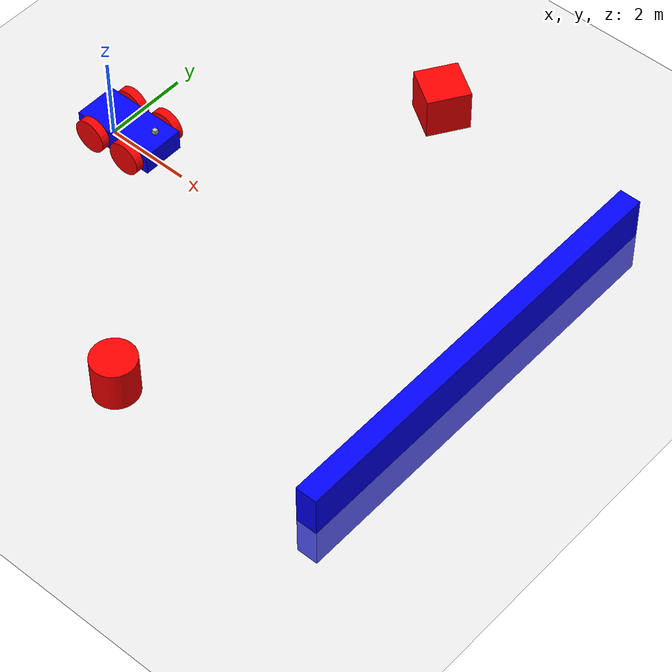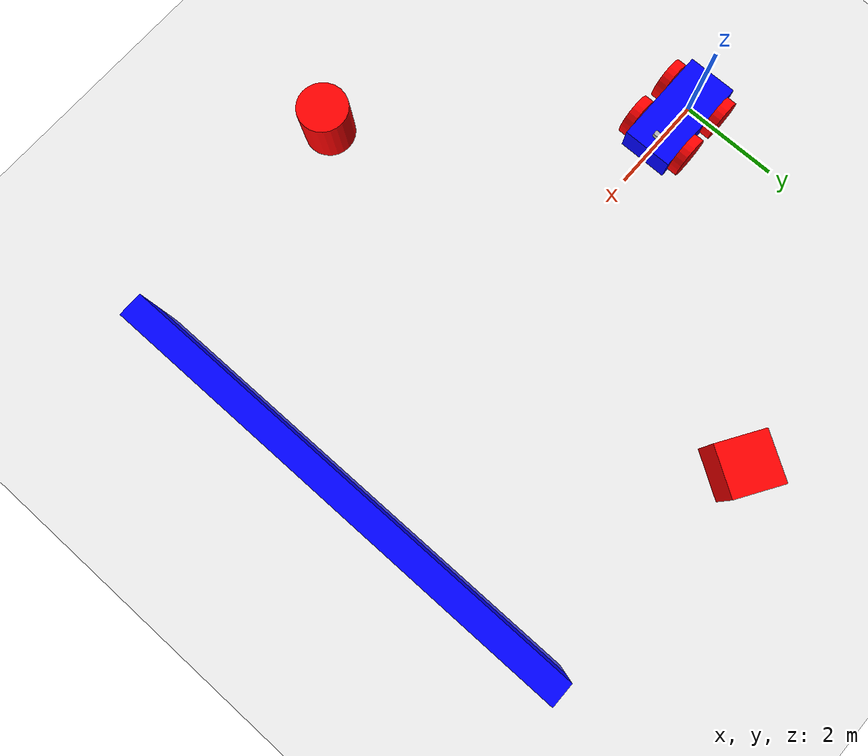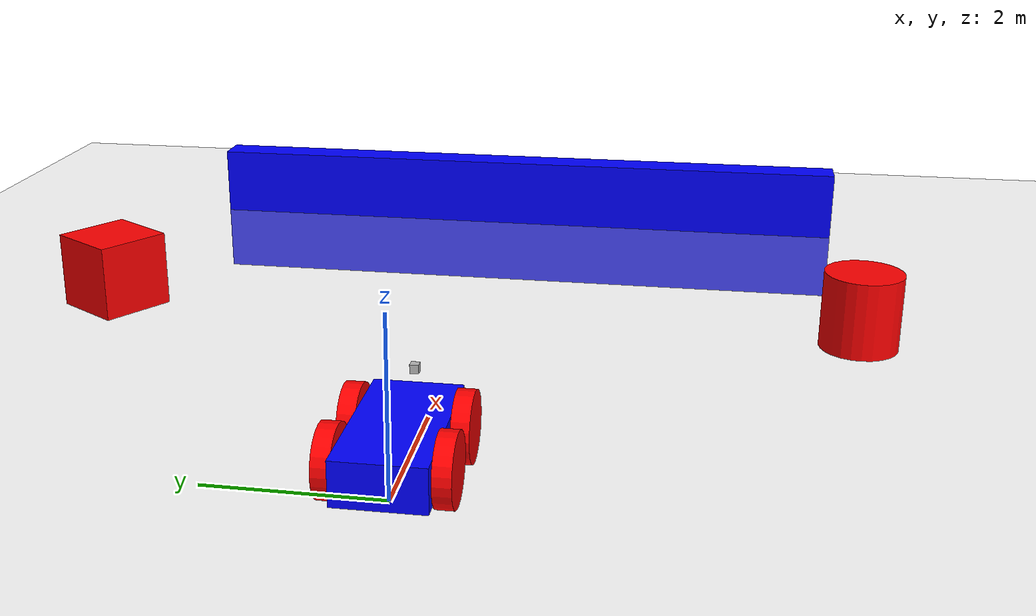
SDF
<?xml version="1.0"?>
<sdf version="1.10">
    <world name="car_world">

        <plugin filename="gz-sim-imu-system"
            name="gz::sim::systems::Imu">
        </plugin>
        <plugin filename="gz-sim-contact-system"
            name="gz::sim::systems::Contact">
        </plugin>
        <plugin
            filename="gz-sim-sensors-system"
            name="gz::sim::systems::Sensors">
            <render_engine>ogre2</render_engine>
        </plugin>

        <physics name="1ms" type="ignored">
            <max_step_size>0.001</max_step_size>
            <real_time_factor>1.0</real_time_factor>
        </physics>
        <plugin
            filename="gz-sim-physics-system"
            name="gz::sim::systems::Physics">
        </plugin>
        <plugin
            filename="gz-sim-user-commands-system"
            name="gz::sim::systems::UserCommands">
        </plugin>
        <plugin
            filename="gz-sim-scene-broadcaster-system"
            name="gz::sim::systems::SceneBroadcaster">
        </plugin>

        <light type="directional" name="sun">
            <cast_shadows>true</cast_shadows>
            <pose>0 0 10 0 0 0</pose>
            <diffuse>0.8 0.8 0.8 1</diffuse>
            <specular>0.2 0.2 0.2 1</specular>
            <attenuation>
                <range>1000</range>
                <constant>0.9</constant>
                <linear>0.01</linear>
                <quadratic>0.001</quadratic>
            </attenuation>
            <direction>-0.5 0.1 -0.9</direction>
        </light>

        <model name="ground_plane">
            <static>true</static>
            <link name="link">
                <collision name="collision">
                    <geometry>
                        <plane>
                            <normal>0 0 1</normal>
                        </plane>
                    </geometry>
                </collision>
                <visual name="visual">
                    <geometry>
                        <plane>
                            <normal>0 0 1</normal>
                            <size>100 100</size>
                        </plane>
                    </geometry>
                    <material>
                        <ambient>0.8 0.8 0.8 1</ambient>
                        <diffuse>0.8 0.8 0.8 1</diffuse>
                        <specular>0.8 0.8 0.8 1</specular>
                    </material>
                </visual>
            </link>
        </model>

        <model name='wall'>
            <static>true</static>
            <pose>10 0 0 0 0 0</pose><!--pose
            relative to the world-->
            <link name='box'>
                <visual name='visual'>
                    <geometry>
                        <box>
                            <size>0.5 10.0 2.0</size>
                        </box>
                    </geometry>
                    <!--let's
                    add color to our link-->
                    <material>
                        <ambient>0.0 0.0 1.0 1</ambient>
                        <diffuse>0.0 0.0 1.0 1</diffuse>
                        <specular>0.0 0.0 1.0 1</specular>
                    </material>
                </visual>
                <collision name='collision'>
                    <geometry>
                        <box>
                            <size>0.5 10.0 2.0</size>
                        </box>
                    </geometry>
                </collision>

                <sensor name='sensor_contact' type='contact'>
                    <contact>
                        <collision>collision</collision>
                    </contact>
                </sensor>
            </link>

            <plugin filename="gz-sim-touchplugin-system"
                name="gz::sim::systems::TouchPlugin">
                <target>vehicle_blue</target>
                <namespace>wall</namespace>
                <time>0.001</time>
                <enabled>true</enabled>

            </plugin>

        </model>

        <model name='box2'>
            <static>true</static>
            <pose>5 5 0.5 0 0 1</pose>
            <link name="link">
                <visual name='visual'>
                    <geometry>
                        <box>
                            <size>1 1 1</size>
                        </box>
                    </geometry>
                    <material>
                        <ambient>1.0 0.0 0.0 1</ambient>
                        <diffuse>1.0 0.0 0.0 1</diffuse>
                        <specular>1.0 0.0 0.0 1</specular>
                    </material>
                </visual>
                <collision name="collision">
                    <geometry>
                        <box>
                            <size>1 1 1</size>
                        </box>
                    </geometry>
                </collision>
            </link>
        </model>

        <model name='box3'>
            <static>true</static>
            <pose>5 -5 0.5 0 0 0</pose>
            <link name="link">
                <visual name='visual'>
                    <geometry>
                        <cylinder>
                            <radius>0.5</radius>
                            <length>1</length>
                        </cylinder>
                    </geometry>
                    <material>
                        <ambient>1.0 0.0 0.0 1</ambient>
                        <diffuse>1.0 0.0 0.0 1</diffuse>
                        <specular>1.0 0.0 0.0 1</specular>
                    </material>
                </visual>
                <collision name="collision">
                    <geometry>
                        <cylinder>
                            <radius>0.5</radius>
                            <length>1</length>
                        </cylinder>
                    </geometry>
                </collision>
            </link>
        </model>

        <plugin filename="gz-sim-triggered-publisher-system"
            name="gz::sim::systems::TriggeredPublisher">
            <input type="gz.msgs.Boolean" topic="/wall/touched">
                <match>data: true</match>
            </input>
            <output type="gz.msgs.Twist" topic="/cmd_vel">
                linear: {x: 0.0}, angular: {z: 0.0}
            </output>
        </plugin>

        <model name='vehicle_blue' canonical_link='chassis'>
            <pose relative_to='world'>0 0 0 0 0 0</pose>

            <link name='chassis'>
                <pose relative_to='__model__'>0.5 0 0.4 0 0 0</pose>
                <inertial> <!--inertial
                    properties of the link mass, inertia matix-->
                    <mass>1.14395</mass>
                    <inertia>
                        <ixx>0.095329</ixx>
                        <ixy>0</ixy>
                        <ixz>0</ixz>
                        <iyy>0.381317</iyy>
                        <iyz>0</iyz>
                        <izz>0.476646</izz>
                    </inertia>
                </inertial>
                <visual name='visual'>
                    <geometry>
                        <box>
                            <size>2.0 1.0 0.5</size>
                        </box>
                    </geometry>
                    <!--let's
                    add color to our link-->
                    <material>
                        <ambient>0.0 0.0 1.0 1</ambient>
                        <diffuse>0.0 0.0 1.0 1</diffuse>
                        <specular>0.0 0.0 1.0 1</specular>
                    </material>
                </visual>
                <collision name='collision'>
                    <geometry>
                        <box>
                            <size>2.0 1.0 0.5</size>
                        </box>
                    </geometry>
                </collision>

                <sensor name="imu_sensor" type="imu">
                    <always_on>1</always_on>
                    <update_rate>1</update_rate>
                    <visualize>true</visualize>
                    <topic>imu</topic>
                </sensor>
            </link>

            <link name='lidar_link'>
                <pose relative_to='chassis'>0.8 0 0.5 0 0 0</pose>
                <inertial>
                    <mass>0.1</mass>
                    <inertia>
                        <ixx>0.000166667</ixx>
                        <iyy>0.000166667</iyy>
                        <izz>0.000166667</izz>
                    </inertia>
                </inertial>
                <collision name='collision'>
                    <geometry>
                        <box>
                            <size>0.1 0.1 0.1</size>
                        </box>
                    </geometry>
                </collision>
                <visual name='visual'>
                    <geometry>
                        <box>
                            <size>0.1 0.1 0.1</size>
                        </box>
                    </geometry>
                </visual>
                <sensor name='gpu_lidar' type='gpu_lidar'>
                    <topic>lidar</topic>
                    <update_rate>10</update_rate>
                    <lidar>
                        <scan>
                            <horizontal>
                                <samples>640</samples>
                                <resolution>1</resolution>
                                <min_angle>-1.396263</min_angle>
                                <max_angle>1.396263</max_angle>
                            </horizontal>
                            <vertical>
                                <samples>1</samples>
                                <resolution>0.01</resolution>
                                <min_angle>0</min_angle>
                                <max_angle>0</max_angle>
                            </vertical>
                        </scan>
                        <range>
                            <min>0.08</min>
                            <max>10.0</max>
                            <resolution>0.01</resolution>
                        </range>
                    </lidar>
                    <visualize>true</visualize>
                </sensor>
            </link>

            <joint name='lidar_joint' type='fixed'>
                <parent>chassis</parent>
                <child>lidar_link</child>
            </joint>

            <link name='left_wheel'>
                <pose relative_to="chassis">-0.5 0.6 0 -1.5707 0 0</pose>
                <inertial>
                    <mass>1</mass>
                    <inertia>
                        <ixx>0.043333</ixx>
                        <ixy>0</ixy>
                        <ixz>0</ixz>
                        <iyy>0.043333</iyy>
                        <iyz>0</iyz>
                        <izz>0.08</izz>
                    </inertia>
                </inertial>
                <visual name='visual'>
                    <geometry>
                        <cylinder>
                            <radius>0.4</radius>
                            <length>0.2</length>
                        </cylinder>
                    </geometry>
                    <material>
                        <ambient>1.0 0.0 0.0 1</ambient>
                        <diffuse>1.0 0.0 0.0 1</diffuse>
                        <specular>1.0 0.0 0.0 1</specular>
                    </material>
                </visual>
                <collision name='collision'>
                    <geometry>
                        <cylinder>
                            <radius>0.4</radius>
                            <length>0.2</length>
                        </cylinder>
                    </geometry>
                </collision>
            </link>

            <link name='right_wheel'>
                <pose relative_to="chassis">-0.5 -0.6 0 -1.5707 0 0</pose> <!--angles
                are in radian-->
                <inertial>
                    <mass>1</mass>
                    <inertia>
                        <ixx>0.043333</ixx>
                        <ixy>0</ixy>
                        <ixz>0</ixz>
                        <iyy>0.043333</iyy>
                        <iyz>0</iyz>
                        <izz>0.08</izz>
                    </inertia>
                </inertial>
                <visual name='visual'>
                    <geometry>
                        <cylinder>
                            <radius>0.4</radius>
                            <length>0.2</length>
                        </cylinder>
                    </geometry>
                    <material>
                        <ambient>1.0 0.0 0.0 1</ambient>
                        <diffuse>1.0 0.0 0.0 1</diffuse>
                        <specular>1.0 0.0 0.0 1</specular>
                    </material>
                </visual>
                <collision name='collision'>
                    <geometry>
                        <cylinder>
                            <radius>0.4</radius>
                            <length>0.2</length>
                        </cylinder>
                    </geometry>
                </collision>
            </link>

            <link name='left_back_wheel'>
                <pose relative_to="chassis">0.5 0.6 0 -1.5707 0 0</pose>
                <inertial>
                    <mass>1</mass>
                    <inertia>
                        <ixx>0.043333</ixx>
                        <ixy>0</ixy>
                        <ixz>0</ixz>
                        <iyy>0.043333</iyy>
                        <iyz>0</iyz>
                        <izz>0.08</izz>
                    </inertia>
                </inertial>
                <visual name='visual'>
                    <geometry>
                        <cylinder>
                            <radius>0.4</radius>
                            <length>0.2</length>
                        </cylinder>
                    </geometry>
                    <material>
                        <ambient>1.0 0.0 0.0 1</ambient>
                        <diffuse>1.0 0.0 0.0 1</diffuse>
                        <specular>1.0 0.0 0.0 1</specular>
                    </material>
                </visual>
                <collision name='collision'>
                    <geometry>
                        <cylinder>
                            <radius>0.4</radius>
                            <length>0.2</length>
                        </cylinder>
                    </geometry>
                </collision>
            </link>

            <link name='right_back_wheel'>
                <pose relative_to="chassis">0.5 -0.6 0 -1.5707 0 0</pose>
                <inertial>
                    <mass>1</mass>
                    <inertia>
                        <ixx>0.043333</ixx>
                        <ixy>0</ixy>
                        <ixz>0</ixz>
                        <iyy>0.043333</iyy>
                        <iyz>0</iyz>
                        <izz>0.08</izz>
                    </inertia>
                </inertial>
                <visual name='visual'>
                    <geometry>
                        <cylinder>
                            <radius>0.4</radius>
                            <length>0.2</length>
                        </cylinder>
                    </geometry>
                    <material>
                        <ambient>1.0 0.0 0.0 1</ambient>
                        <diffuse>1.0 0.0 0.0 1</diffuse>
                        <specular>1.0 0.0 0.0 1</specular>
                    </material>
                </visual>
                <collision name='collision'>
                    <geometry>
                        <cylinder>
                            <radius>0.4</radius>
                            <length>0.2</length>
                        </cylinder>
                    </geometry>
                </collision>
            </link>

            <joint name='left_wheel_joint' type='revolute'>
                <pose relative_to='left_wheel' />
                <parent>chassis</parent>
                <child>left_wheel</child>
                <axis>
                    <xyz expressed_in='__model__'>0 1 0</xyz>
                    <limit>
                        <lower>-1.79769e+308</lower>    <!--negative
                        infinity-->
                        <upper>1.79769e+308</upper>     <!--positive
                        infinity-->
                    </limit>
                </axis>
            </joint>

            <joint name='right_wheel_joint' type='revolute'>
                <pose relative_to='right_wheel' />
                <parent>chassis</parent>
                <child>right_wheel</child>
                <axis>
                    <xyz expressed_in='__model__'>0 1 0</xyz>
                    <limit>
                        <lower>-1.79769e+308</lower>    <!--negative
                        infinity-->
                        <upper>1.79769e+308</upper>     <!--positive
                        infinity-->
                    </limit>
                </axis>
            </joint>

            <joint name='left_back_wheel_joint' type='revolute'>
                <pose relative_to='left_back_wheel' />
                <parent>chassis</parent>
                <child>left_back_wheel</child>
                <axis>
                    <xyz expressed_in='__model__'>0 1 0</xyz>
                    <limit>
                        <lower>-1.79769e+308</lower>    <!--negative
                        infinity-->
                        <upper>1.79769e+308</upper>     <!--positive
                        infinity-->
                    </limit>
                </axis>
            </joint>

            <joint name='right_back_wheel_joint' type='revolute'>
                <pose relative_to='right_back_wheel' />
                <parent>chassis</parent>
                <child>right_back_wheel</child>
                <axis>
                    <xyz expressed_in='__model__'>0 1 0</xyz>
                    <limit>
                        <lower>-1.79769e+308</lower>    <!--negative
                        infinity-->
                        <upper>1.79769e+308</upper>     <!--positive
                        infinity-->
                    </limit>
                </axis>
            </joint>

            <!-- Plugin for movement-->
            <plugin filename="gz-sim-diff-drive-system"
                name="gz::sim::systems::DiffDrive">
                <!-- For 4-wheel drive, list both front and rear joints -->
                <left_joint>left_wheel_joint</left_joint>
                <left_joint>left_back_wheel_joint</left_joint>
                <right_joint>right_wheel_joint</right_joint>
                <right_joint>right_back_wheel_joint</right_joint>
                <wheel_separation>1.2</wheel_separation>
                <wheel_radius>0.4</wheel_radius>
                <odom_publish_frequency>1</odom_publish_frequency>
                <topic>cmd_vel</topic>
            </plugin>

            <!-- Moving Forward-->
            <plugin filename="gz-sim-triggered-publisher-system"
                name="gz::sim::systems::TriggeredPublisher">
                <input type="gz.msgs.Int32" topic="/keyboard/keypress">
                    <match field="data">87</match>
                </input>
                <output type="gz.msgs.Twist" topic="/cmd_vel">
                    linear: {x: 0.5}, angular: {z: 0.0}
                </output>
            </plugin>

            <!-- Moving Backward-->
            <plugin filename="gz-sim-triggered-publisher-system"
                name="gz::sim::systems::TriggeredPublisher">
                <input type="gz.msgs.Int32" topic="/keyboard/keypress">
                    <match field="data">83</match>
                </input>
                <output type="gz.msgs.Twist" topic="/cmd_vel">
                    linear: {x: -0.5}, angular: {z: 0.0}
                </output>
            </plugin>

            <!-- Moving Left-->
            <plugin filename="gz-sim-triggered-publisher-system"
                name="gz::sim::systems::TriggeredPublisher">
                <input type="gz.msgs.Int32" topic="/keyboard/keypress">
                    <match field="data">65</match>
                </input>
                <output type="gz.msgs.Twist" topic="/cmd_vel">
                    linear: {x: 0.0}, angular: {z: 0.5}
                </output>
            </plugin>

            <!-- Moving Right-->
            <plugin filename="gz-sim-triggered-publisher-system"
                name="gz::sim::systems::TriggeredPublisher">
                <input type="gz.msgs.Int32" topic="/keyboard/keypress">
                    <match field="data">68</match>
                </input>
                <output type="gz.msgs.Twist" topic="/cmd_vel">
                    linear: {x: 0.0}, angular: {z: -0.5}
                </output>
            </plugin>

        </model>
    </world>
</sdf>
